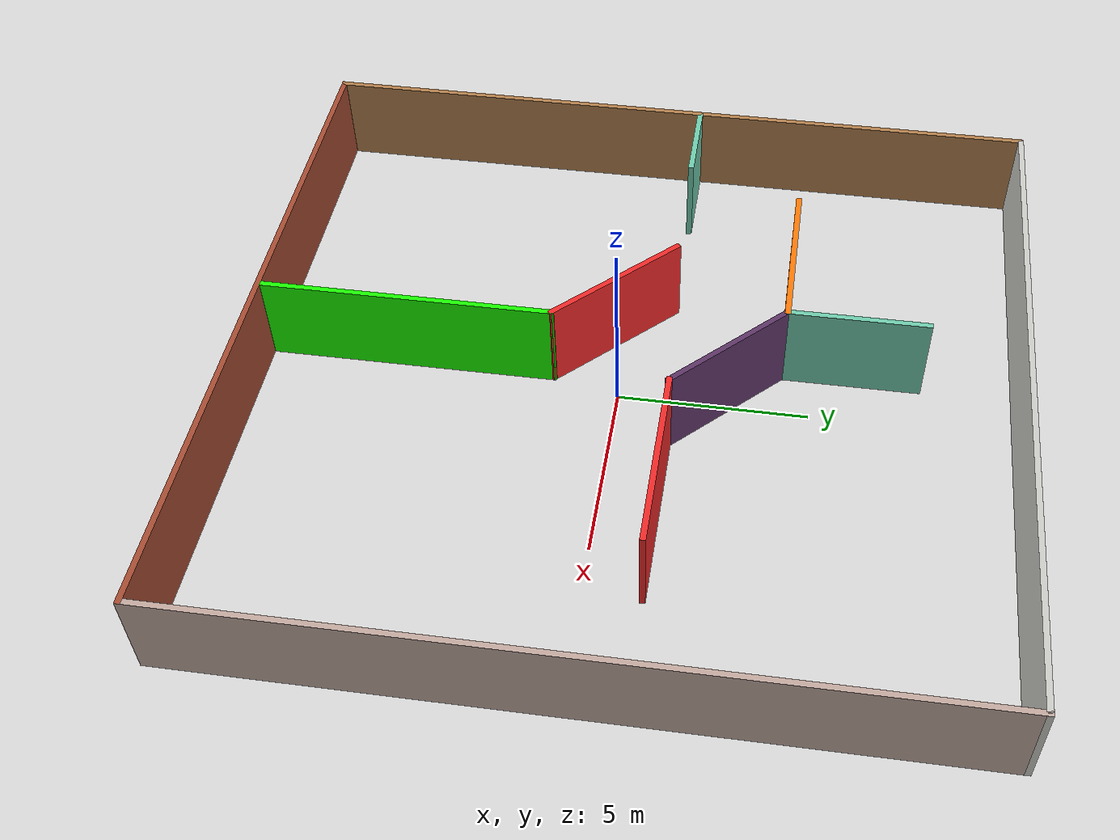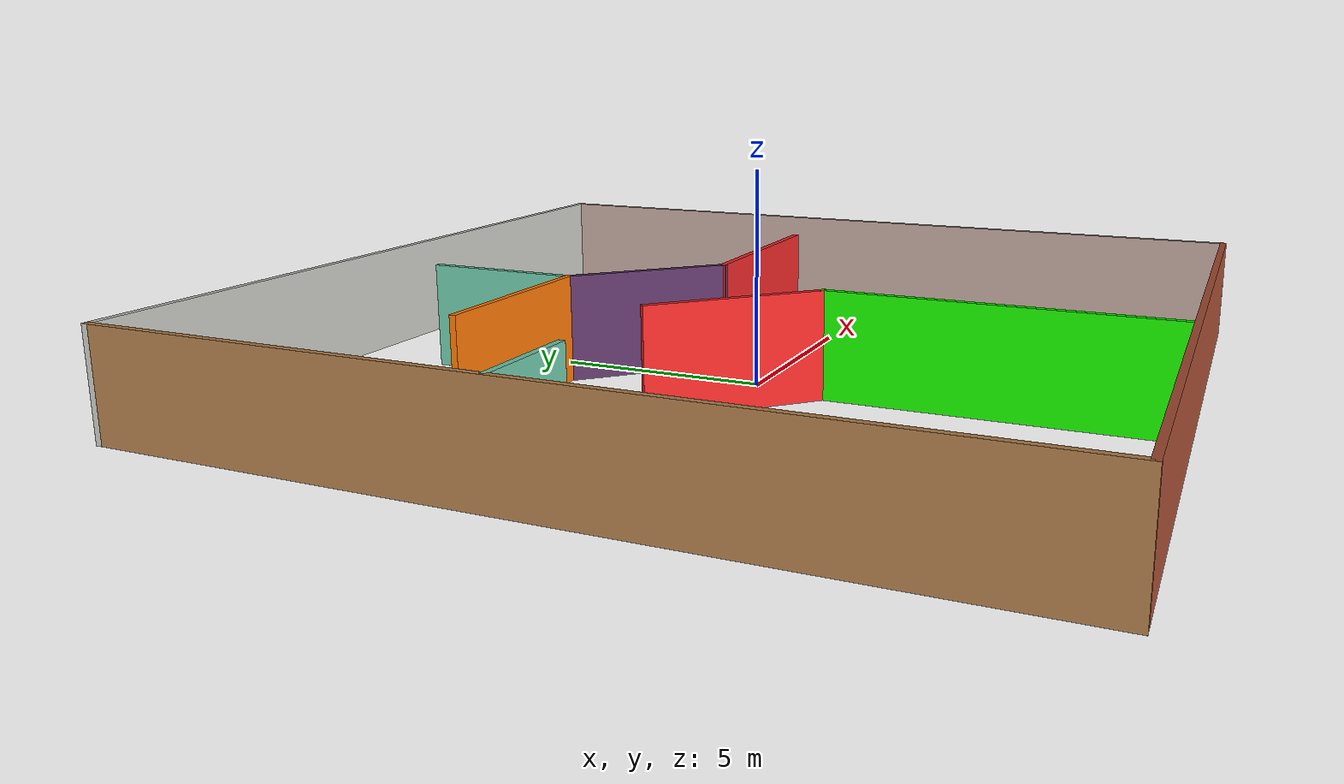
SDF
<?xml version='1.0'?>
<sdf version='1.6'>
  <model name='house_design'>
    <pose frame=''>0.225817 0.399633 0 0 -0 0</pose>
    <link name='Wall_1'>
      <collision name='Wall_1_Collision'>
        <geometry>
          <box>
            <size>20 0.15 2.5</size>
          </box>
        </geometry>
        <pose frame=''>0 0 1.25 0 -0 0</pose>
      </collision>
      <visual name='Wall_1_Visual'>
        <pose frame=''>0 0 1.25 0 -0 0</pose>
        <geometry>
          <box>
            <size>20 0.15 2.5</size>
          </box>
        </geometry>
        <material>
          <script>
            <uri>file://media/materials/scripts/gazebo.material</uri>
            <name>Gazebo/Wood</name>
          </script>
          <ambient>1 1 1 1</ambient>
        </material>
        <meta>
          <layer>0</layer>
        </meta>
      </visual>
      <pose frame=''>-9.3 0 0 0 -0 -1.5708</pose>
    </link>
    <link name='Wall_2'>
      <collision name='Wall_2_Collision'>
        <geometry>
          <box>
            <size>18.75 0.15 2.5</size>
          </box>
        </geometry>
        <pose frame=''>0 0 1.25 0 -0 0</pose>
      </collision>
      <visual name='Wall_2_Visual'>
        <pose frame=''>0 0 1.25 0 -0 0</pose>
        <geometry>
          <box>
            <size>18.75 0.15 2.5</size>
          </box>
        </geometry>
        <material>
          <script>
            <uri>file://media/materials/scripts/gazebo.material</uri>
            <name>Gazebo/Bricks</name>
          </script>
          <ambient>1 1 1 1</ambient>
        </material>
        <meta>
          <layer>0</layer>
        </meta>
      </visual>
      <pose frame=''>-0 -9.925 0 0 -0 0</pose>
    </link>
    <link name='Wall_21'>
      <collision name='Wall_21_Collision'>
        <geometry>
          <box>
            <size>5 0.15 2.5</size>
          </box>
        </geometry>
        <pose frame=''>0 0 1.25 0 -0 0</pose>
      </collision>
      <visual name='Wall_21_Visual'>
        <pose frame=''>0 0 1.25 0 -0 0</pose>
        <geometry>
          <box>
            <size>5 0.15 2.5</size>
          </box>
        </geometry>
        <material>
          <script>
            <uri>file://media/materials/scripts/gazebo.material</uri>
            <name>Gazebo/Grey</name>
          </script>
          <ambient>0.937255 0.160784 0.160784 1</ambient>
        </material>
        <meta>
          <layer>0</layer>
        </meta>
      </visual>
      <pose frame=''>3.62745 1.09312 0 0 -0 3.14159</pose>
    </link>
    <link name='Wall_22'>
      <collision name='Wall_22_Collision'>
        <geometry>
          <box>
            <size>4 0.15 2.5</size>
          </box>
        </geometry>
        <pose frame=''>0 0 1.25 0 -0 0</pose>
      </collision>
      <visual name='Wall_22_Visual'>
        <pose frame=''>0 0 1.25 0 -0 0</pose>
        <geometry>
          <box>
            <size>4 0.15 2.5</size>
          </box>
        </geometry>
        <material>
          <script>
            <uri>file://media/materials/scripts/gazebo.material</uri>
            <name>Gazebo/Grey</name>
          </script>
          <ambient>0.360784 0.207843 0.4 1</ambient>
        </material>
        <meta>
          <layer>0</layer>
        </meta>
      </visual>
      <pose frame=''>-0.158727 2.4543 0 0 -0 2.35619</pose>
    </link>
    <link name='Wall_23'>
      <collision name='Wall_23_Collision'>
        <geometry>
          <box>
            <size>3.75 0.15 2.5</size>
          </box>
        </geometry>
        <pose frame=''>0 0 1.25 0 -0 0</pose>
      </collision>
      <visual name='Wall_23_Visual'>
        <pose frame=''>0 0 1.25 0 -0 0</pose>
        <geometry>
          <box>
            <size>3.75 0.15 2.5</size>
          </box>
        </geometry>
        <material>
          <script>
            <uri>file://media/materials/scripts/gazebo.material</uri>
            <name>Gazebo/Grey</name>
          </script>
          <ambient>0.435294 0.796078 0.67451 1</ambient>
        </material>
        <meta>
          <layer>0</layer>
        </meta>
      </visual>
      <pose frame=''>-1.51991 5.61548 0 0 -0 1.5708</pose>
    </link>
    <link name='Wall_25'>
      <collision name='Wall_25_Collision'>
        <geometry>
          <box>
            <size>4.5 0.15 2.5</size>
          </box>
        </geometry>
        <pose frame=''>0 0 1.25 0 -0 0</pose>
      </collision>
      <visual name='Wall_25_Visual'>
        <pose frame=''>0 0 1.25 0 -0 0</pose>
        <geometry>
          <box>
            <size>4.5 0.15 2.5</size>
          </box>
        </geometry>
        <material>
          <script>
            <uri>file://media/materials/scripts/gazebo.material</uri>
            <name>Gazebo/Grey</name>
          </script>
          <ambient>0.996078 0.47451 0.0196078 1</ambient>
        </material>
        <meta>
          <layer>0</layer>
        </meta>
      </visual>
      <pose frame=''>-3.69491 3.81548 0 0 -0 3.14159</pose>
    </link>
    <link name='Wall_27'>
      <collision name='Wall_27_Collision'>
        <geometry>
          <box>
            <size>4.25 0.15 2.5</size>
          </box>
        </geometry>
        <pose frame=''>0 0 1.25 0 -0 0</pose>
      </collision>
      <visual name='Wall_27_Visual'>
        <pose frame=''>0 0 1.25 0 -0 0</pose>
        <geometry>
          <box>
            <size>4.25 0.15 2.5</size>
          </box>
        </geometry>
        <material>
          <script>
            <uri>file://media/materials/scripts/gazebo.material</uri>
            <name>Gazebo/Grey</name>
          </script>
          <ambient>0.937255 0.160784 0.160784 1</ambient>
        </material>
        <meta>
          <layer>0</layer>
        </meta>
      </visual>
      <pose frame=''>-2.12843 -0.728636 0 0 -0 -0.785398</pose>
    </link>
    <link name='Wall_28'>
      <collision name='Wall_28_Collision'>
        <geometry>
          <box>
            <size>7.75 0.15 2.5</size>
          </box>
        </geometry>
        <pose frame=''>0 0 1.25 0 -0 0</pose>
      </collision>
      <visual name='Wall_28_Visual'>
        <pose frame=''>0 0 1.25 0 -0 0</pose>
        <geometry>
          <box>
            <size>7.75 0.15 2.5</size>
          </box>
        </geometry>
        <material>
          <script>
            <uri>file://media/materials/scripts/gazebo.material</uri>
            <name>Gazebo/Grey</name>
          </script>
          <ambient>0.0980392 1 0 1</ambient>
        </material>
        <meta>
          <layer>0</layer>
        </meta>
      </visual>
      <pose frame=''>-0.678859 -5.9782 0 0 -0 -1.5708</pose>
    </link>
    <link name='Wall_3'>
      <collision name='Wall_3_Collision'>
        <geometry>
          <box>
            <size>20 0.15 2.5</size>
          </box>
        </geometry>
        <pose frame=''>0 0 1.25 0 -0 0</pose>
      </collision>
      <visual name='Wall_3_Visual'>
        <pose frame=''>0 0 1.25 0 -0 0</pose>
        <geometry>
          <box>
            <size>20 0.15 2.5</size>
          </box>
        </geometry>
        <material>
          <script>
            <uri>file://media/materials/scripts/gazebo.material</uri>
            <name>Gazebo/Grey</name>
          </script>
          <ambient>0.760784 0.662745 0.627451 1</ambient>
        </material>
        <meta>
          <layer>0</layer>
        </meta>
      </visual>
      <pose frame=''>9.3 0 0 0 -0 1.5708</pose>
    </link>
    <link name='Wall_30'>
      <collision name='Wall_30_Collision'>
        <geometry>
          <box>
            <size>2.5 0.15 2.5</size>
          </box>
        </geometry>
        <pose frame=''>0 0 1.25 0 -0 0</pose>
      </collision>
      <visual name='Wall_30_Visual'>
        <pose frame=''>0 0 1.25 0 -0 0</pose>
        <geometry>
          <box>
            <size>2.5 0.15 2.5</size>
          </box>
        </geometry>
        <material>
          <script>
            <uri>file://media/materials/scripts/gazebo.material</uri>
            <name>Gazebo/Grey</name>
          </script>
          <ambient>0.435294 0.796078 0.67451 1</ambient>
        </material>
        <meta>
          <layer>0</layer>
        </meta>
      </visual>
      <pose frame=''>-8.08329 0.724022 0 0 -0 0</pose>
    </link>
    <link name='Wall_4'>
      <collision name='Wall_4_Collision'>
        <geometry>
          <box>
            <size>18.75 0.15 2.5</size>
          </box>
        </geometry>
        <pose frame=''>0 0 1.25 0 -0 0</pose>
      </collision>
      <visual name='Wall_4_Visual'>
        <pose frame=''>0 0 1.25 0 -0 0</pose>
        <geometry>
          <box>
            <size>18.75 0.15 2.5</size>
          </box>
        </geometry>
        <material>
          <script>
            <uri>file://media/materials/scripts/gazebo.material</uri>
            <name>Gazebo/CeilingTiled</name>
          </script>
          <ambient>1 1 1 1</ambient>
        </material>
        <meta>
          <layer>0</layer>
        </meta>
      </visual>
      <pose frame=''>-0 9.925 0 0 -0 3.14159</pose>
    </link>
    <static>1</static>
  </model>
</sdf>
